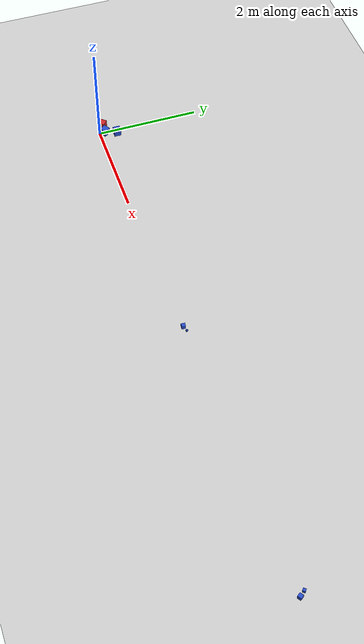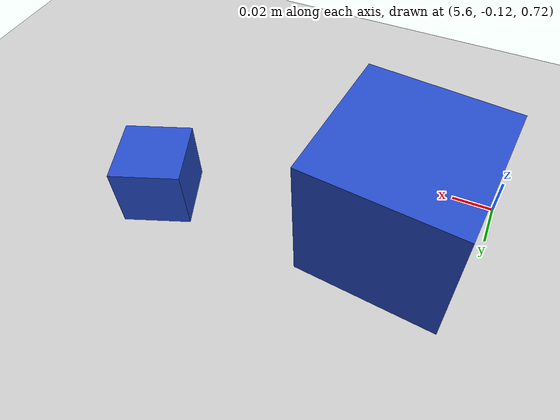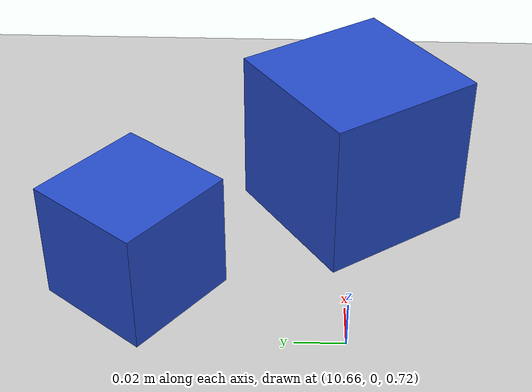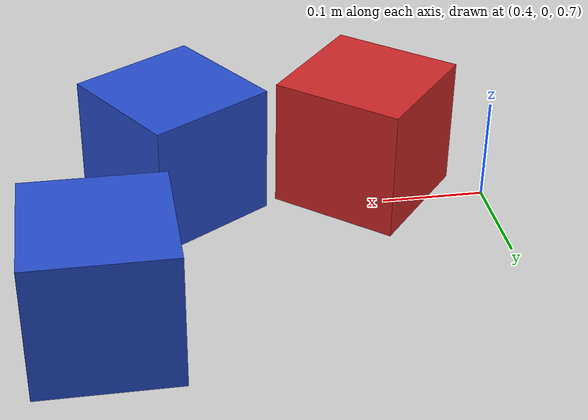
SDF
<sdf version="1.4">
 <world name="simple">
  <include><uri>model://ground_plane</uri></include>
  <include><uri>model://sun</uri></include>
  <include>
   <uri>model://red_cube13cm</uri>
   <name>block11</name>
   <pose>0.510150245879 -0.0508593138929 0.75 0 0 -2.26357894354</pose>
  </include>
  <include>
   <uri>model://blue_cube13cm</uri>
   <name>block12</name>
   <pose>0.782786695821 0.166651636094 0.75 0 0 -3.13475676214</pose>
  </include>
  <include>
   <uri>model://blue_cube13cm</uri>
   <name>block14</name>
   <pose>0.701942674896 -0.0511813571129 0.75 0 0 0.558641367127</pose>
  </include>
  <include>
   <uri>model://blue_cube7cm</uri>
   <name>block22</name>
   <pose>5.64051792612 -0.0861617582781 0.75 0 0 -1.66968315047</pose>
  </include>
  <include>
   <uri>model://blue_cube3cm</uri>
   <name>block24</name>
   <pose>5.74545761107 -0.0558662594958 0.75 0 0 0.349028456918</pose>
  </include>
  <include>
   <uri>model://blue_cube5cm</uri>
   <name>block32</name>
   <pose>10.6854538441 0.0829706131109 0.75 0 0 -2.2342388527</pose>
  </include>
  <include>
   <uri>model://blue_cube7cm</uri>
   <name>block34</name>
   <pose>10.7560696381 -0.00456613197224 0.75 0 0 2.17932804485</pose>
  </include>
 </world>
</sdf>

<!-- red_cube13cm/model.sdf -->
<sdf version='1.4'>
  <model name="red_cube13cm">
      <static>0</static>
      <link name='link'>
        <inertial>
          <mass>0.3</mass>
          <inertia>
            <ixx>0.001</ixx>
            <ixy>0.000000</ixy>
            <ixz>0.000000</ixz>
            <iyy>0.001</iyy>
            <iyz>0.000000</iyz>
            <izz>0.001</izz>
          </inertia>
        </inertial>
        <collision name='collision'>
          <geometry>
            <box>
              <size>0.130 0.130 0.130</size>
            </box>
          </geometry>
          <surface>
            <friction>
              <ode>
                <mu>5.0</mu>
                <mu2>5.0</mu2>
              </ode>
            </friction>
            <contact>
              <ode>
                <kp>1000000.0</kp>
                <kd>100.0</kd>
                <max_vel>1.0</max_vel>
                <min_depth>0.002</min_depth>
              </ode>
            </contact>
          </surface>
        </collision>
        <visual name='visual'>
          <geometry>
            <box>
              <size>0.130 0.130 0.130</size>
            </box>
          </geometry>
          <material>
            <script>
              <uri>file://media/materials/scripts/gazebo.material</uri>
              <name>Gazebo/Red</name>
            </script>
          </material>
        </visual>
        <velocity_decay>
          <linear>0.000000</linear>
          <angular>0.000000</angular>
        </velocity_decay>
        <self_collide>0</self_collide>
        <kinematic>0</kinematic>
        <gravity>1</gravity>
      </link>
  </model>
</sdf>

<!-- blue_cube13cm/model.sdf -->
<sdf version='1.4'>
  <model name="blue_cube13cm">
      <static>0</static>
      <link name='link'>
        <inertial>
          <mass>0.3</mass>
          <inertia>
            <ixx>0.001</ixx>
            <ixy>0.000000</ixy>
            <ixz>0.000000</ixz>
            <iyy>0.001</iyy>
            <iyz>0.000000</iyz>
            <izz>0.001</izz>
          </inertia>
        </inertial>
        <collision name='collision'>
          <geometry>
            <box>
              <size>0.130 0.130 0.130</size>
            </box>
          </geometry>
          <surface>
            <friction>
              <ode>
                <mu>5.0</mu>
                <mu2>5.0</mu2>
              </ode>
            </friction>
            <contact>
              <ode>
                <kp>1000000.0</kp>
                <kd>100.0</kd>
                <max_vel>1.0</max_vel>
                <min_depth>0.002</min_depth>
              </ode>
            </contact>
          </surface>
        </collision>
        <visual name='visual'>
          <geometry>
            <box>
              <size>0.130 0.130 0.130</size>
            </box>
          </geometry>
          <material>
            <script>
              <uri>file://media/materials/scripts/gazebo.material</uri>
              <name>Gazebo/Blue</name>
            </script>
          </material>
        </visual>
        <velocity_decay>
          <linear>0.000000</linear>
          <angular>0.000000</angular>
        </velocity_decay>
        <self_collide>0</self_collide>
        <kinematic>0</kinematic>
        <gravity>1</gravity>
      </link>
  </model>
</sdf>

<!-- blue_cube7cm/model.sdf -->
<sdf version='1.4'>
  <model name="blue_cube7cm">
      <static>0</static>
      <link name='link'>
        <inertial>
          <mass>0.3</mass>
          <inertia>
            <ixx>0.001</ixx>
            <ixy>0.000000</ixy>
            <ixz>0.000000</ixz>
            <iyy>0.001</iyy>
            <iyz>0.000000</iyz>
            <izz>0.001</izz>
          </inertia>
        </inertial>
        <collision name='collision'>
          <geometry>
            <box>
              <size>0.070 0.070 0.070</size>
            </box>
          </geometry>
          <surface>
            <friction>
              <ode>
                <mu>5.0</mu>
                <mu2>5.0</mu2>
              </ode>
            </friction>
            <contact>
              <ode>
                <kp>1000000.0</kp>
                <kd>100.0</kd>
                <max_vel>1.0</max_vel>
                <min_depth>0.002</min_depth>
              </ode>
            </contact>
          </surface>
        </collision>
        <visual name='visual'>
          <geometry>
            <box>
              <size>0.070 0.070 0.070</size>
            </box>
          </geometry>
          <material>
            <script>
              <uri>file://media/materials/scripts/gazebo.material</uri>
              <name>Gazebo/Blue</name>
            </script>
          </material>
        </visual>
        <velocity_decay>
          <linear>0.000000</linear>
          <angular>0.000000</angular>
        </velocity_decay>
        <self_collide>0</self_collide>
        <kinematic>0</kinematic>
        <gravity>1</gravity>
      </link>
  </model>
</sdf>

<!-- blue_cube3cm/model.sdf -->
<sdf version='1.4'>
  <model name="blue_cube3cm">
      <static>0</static>
      <link name='link'>
        <inertial>
          <mass>0.3</mass>
          <inertia>
            <ixx>0.001</ixx>
            <ixy>0.000000</ixy>
            <ixz>0.000000</ixz>
            <iyy>0.001</iyy>
            <iyz>0.000000</iyz>
            <izz>0.001</izz>
          </inertia>
        </inertial>
        <collision name='collision'>
          <geometry>
            <box>
              <size>0.030 0.030 0.030</size>
            </box>
          </geometry>
          <surface>
            <friction>
              <ode>
                <mu>5.0</mu>
                <mu2>5.0</mu2>
              </ode>
            </friction>
            <contact>
              <ode>
                <kp>1000000.0</kp>
                <kd>100.0</kd>
                <max_vel>1.0</max_vel>
                <min_depth>0.002</min_depth>
              </ode>
            </contact>
          </surface>
        </collision>
        <visual name='visual'>
          <geometry>
            <box>
              <size>0.030 0.030 0.030</size>
            </box>
          </geometry>
          <material>
            <script>
              <uri>file://media/materials/scripts/gazebo.material</uri>
              <name>Gazebo/Blue</name>
            </script>
          </material>
        </visual>
        <velocity_decay>
          <linear>0.000000</linear>
          <angular>0.000000</angular>
        </velocity_decay>
        <self_collide>0</self_collide>
        <kinematic>0</kinematic>
        <gravity>1</gravity>
      </link>
  </model>
</sdf>

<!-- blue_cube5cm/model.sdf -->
<sdf version='1.4'>
  <model name="blue_cube5cm">
      <static>0</static>
      <link name='link'>
        <inertial>
          <mass>0.3</mass>
          <inertia>
            <ixx>0.001</ixx>
            <ixy>0.000000</ixy>
            <ixz>0.000000</ixz>
            <iyy>0.001</iyy>
            <iyz>0.000000</iyz>
            <izz>0.001</izz>
          </inertia>
        </inertial>
        <collision name='collision'>
          <geometry>
            <box>
              <size>0.050 0.050 0.050</size>
            </box>
          </geometry>
          <surface>
            <friction>
              <ode>
                <mu>5.0</mu>
                <mu2>5.0</mu2>
              </ode>
            </friction>
            <contact>
              <ode>
                <kp>1000000.0</kp>
                <kd>100.0</kd>
                <max_vel>1.0</max_vel>
                <min_depth>0.002</min_depth>
              </ode>
            </contact>
          </surface>
        </collision>
        <visual name='visual'>
          <geometry>
            <box>
              <size>0.050 0.050 0.050</size>
            </box>
          </geometry>
          <material>
            <script>
              <uri>file://media/materials/scripts/gazebo.material</uri>
              <name>Gazebo/Blue</name>
            </script>
          </material>
        </visual>
        <velocity_decay>
          <linear>0.000000</linear>
          <angular>0.000000</angular>
        </velocity_decay>
        <self_collide>0</self_collide>
        <kinematic>0</kinematic>
        <gravity>1</gravity>
      </link>
  </model>
</sdf>
